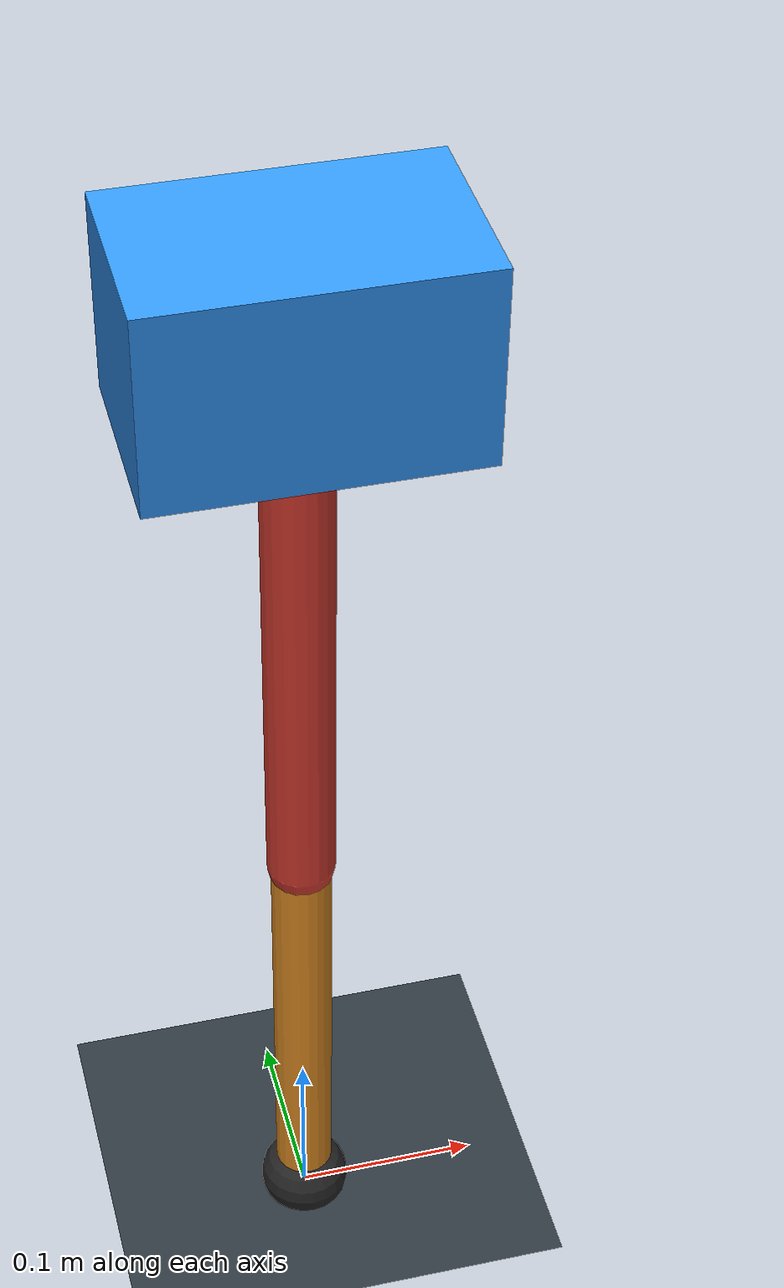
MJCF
<mujoco model="single_axis_two_bar">
  <compiler angle="radian" inertiafromgeom="true"/>
  <option timestep="0.001" integrator="implicitfast" gravity="0 0 -9.81"/>
  <default>
    <joint damping="0.08"/>
    <geom friction="1.2 0.01 0.0001" condim="3"/>
  </default>
  <worldbody>
    <geom name="floor" type="plane" size="5 5 0.1" rgba="0.18 0.22 0.25 1"/>
    <body name="carriage" pos="0 0 0.595797381070355">
      <joint name="pole_slide" type="slide" axis="0 0 1"/>
      <geom name="payload" type="box" size="0.08 0.05 0.05" mass="3.5269355170303234" rgba="0.2 0.6 1 1"/>
      <body name="thigh" pos="0 0 0">
        <joint name="hip" type="hinge" axis="0 1 0"/>
        <geom name="thigh_link" type="capsule" fromto="0 0 0 0 0 -0.32862448364725666" size="0.018" mass="0.23414928698809986" rgba="0.9 0.25 0.2 1"/>
        <body name="shank" pos="0 0 -0.32862448364725666">
          <joint name="knee" type="hinge" axis="0 1 0"/>
          <geom name="shank_link" type="capsule" fromto="0 0 0 0 0 -0.259826424672697" size="0.016" mass="0.18512976088258393" rgba="0.95 0.6 0.15 1"/>
          <geom name="foot" type="sphere" pos="0 0 -0.259826424672697" size="0.025" mass="0.03" rgba="0.15 0.15 0.15 1"/>
          <site name="toe" pos="0 0 -0.259826424672697" size="0.008"/>
        </body>
      </body>
    </body>
  </worldbody>
  <actuator>
    <motor name="hip_motor" joint="hip" ctrlrange="-35.34451707333966 35.34451707333966"/>
    <motor name="knee_motor" joint="knee" ctrlrange="-166.8916212006094 166.8916212006094"/>
  </actuator>
</mujoco>
